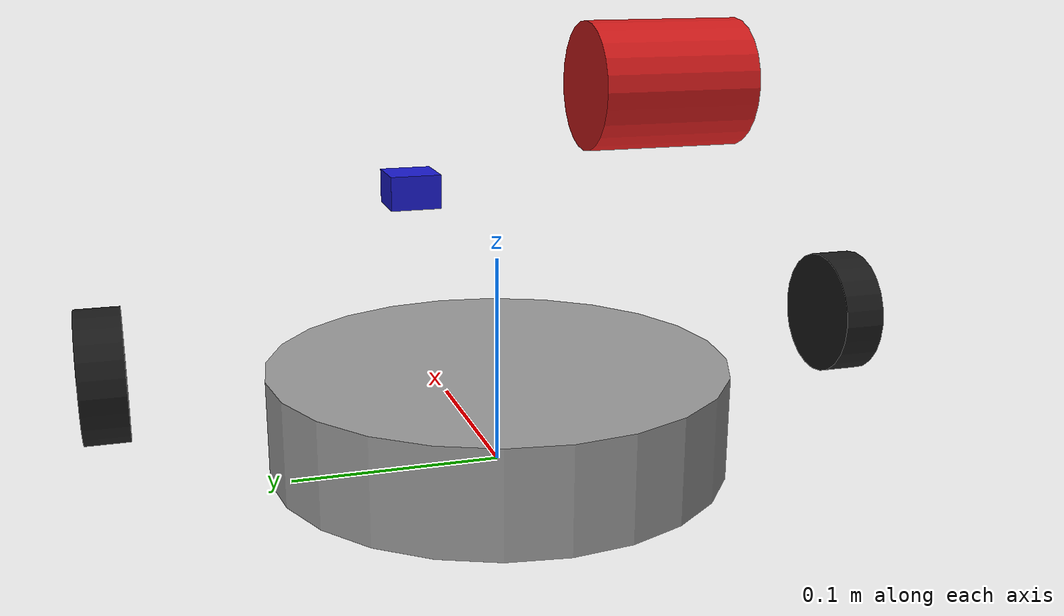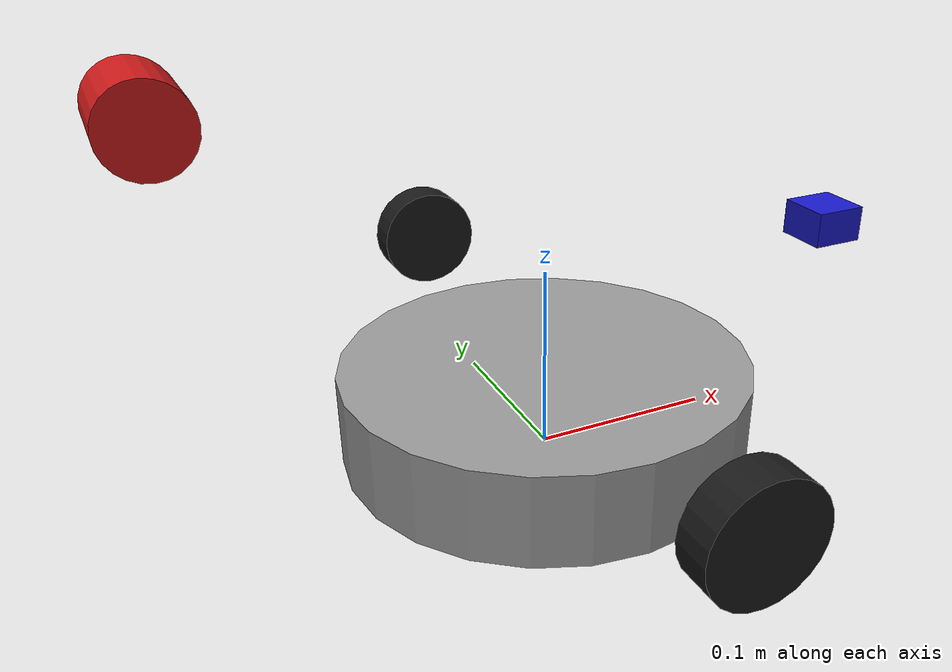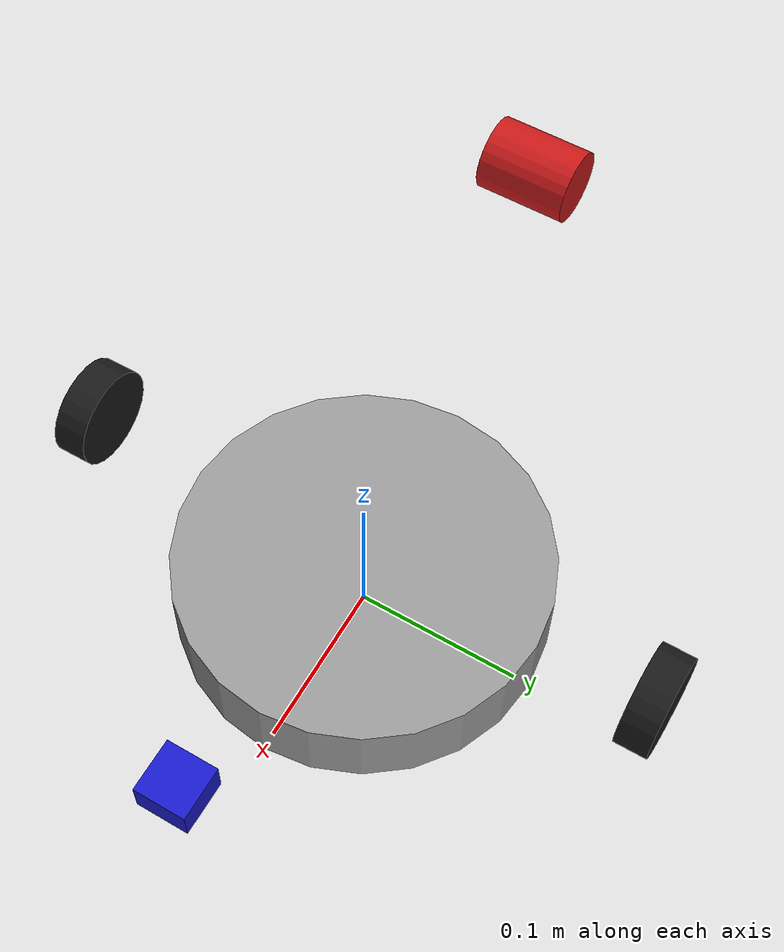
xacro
<?xml version="1.0"?>
<robot name="sweeper_bot" xmlns:xacro="http://ros.org/wiki/xacro">

  <!-- ────────────────── 通用参数 ────────────────── -->
  <xacro:property name="wheel_radius"       value="0.03"/>
  <xacro:property name="wheel_length"       value="0.02"/>   <!-- 轮子厚度 -->
  <xacro:property name="wheel_separation"   value="0.18"/>   <!-- 左右轮中心距 -->
  <xacro:property name="base_radius"        value="0.11"/>
  <xacro:property name="base_height"        value="0.05"/>
  <xacro:property name="wheel_mass"         value="0.10"/>   <!-- kg，每个轮子的质量 -->
  <xacro:property name="base_mass"          value="1.00"/>   <!-- kg，底盘质量 -->

  <!-- base_link -->
  <link name="base_link">
    <visual>
      <geometry>
        <cylinder radius="${base_radius}" length="${base_height}"/>
      </geometry>
      <origin xyz="0 0 ${base_height/2}" rpy="0 0 0"/>
      <material name="gray"><color rgba="0.6 0.6 0.6 1.0"/></material>
    </visual>
    <collision>
      <geometry>
        <cylinder radius="${base_radius}" length="${base_height}"/>
      </geometry>
      <origin xyz="0 0 ${base_height/2}" rpy="0 0 0"/>
    </collision>
    <inertial>
      <mass value="${base_mass}"/>
      <origin xyz="0 0 ${base_height/2}" rpy="0 0 0"/>
      <!-- 粗略圆柱惯性估计：Izz > Ixx = Iyy -->
      <inertia ixx="0.01" iyy="0.01" izz="0.02" ixy="0" ixz="0" iyz="0"/>
    </inertial>
  </link>

  <!-- base_footprint（仅 TF 基准，无视觉） -->
  <link name="base_footprint"/>

  <!-- left_wheel -->
  <link name="left_wheel">
    <visual>
      <geometry>
        <cylinder radius="${wheel_radius}" length="${wheel_length}"/>
      </geometry>
      <origin xyz="0 ${wheel_separation/2} ${wheel_radius}" rpy="1.5708 0 0"/>
      <material name="black"><color rgba="0.1 0.1 0.1 1.0"/></material>
    </visual>
    <collision>
      <geometry>
        <cylinder radius="${wheel_radius}" length="${wheel_length}"/>
      </geometry>
      <origin xyz="0 0 0" rpy="0 0 0"/>
    </collision>
    <inertial>
      <mass value="${wheel_mass}"/>
      <origin xyz="0 0 0" rpy="0 0 0"/>
      <!-- 圆柱惯性：I = ½ m r²（沿轴），I = 1/12 m (3r² + l²)（与轴垂直） -->
      <inertia ixx="1e-4" iyy="1e-4" izz="2e-4" ixy="0" ixz="0" iyz="0"/>
    </inertial>
  </link>

  <!-- right_wheel -->
  <link name="right_wheel">
    <visual>
      <geometry>
        <cylinder radius="${wheel_radius}" length="${wheel_length}"/>
      </geometry>
      <origin xyz="0 -${wheel_separation/2} ${wheel_radius}" rpy="1.5708 0 0"/>
      <material name="black"/>
    </visual>
    <collision>
      <geometry>
        <cylinder radius="${wheel_radius}" length="${wheel_length}"/>
      </geometry>
      <origin xyz="0 0 0" rpy="0 0 0"/>
    </collision>
    <inertial>
      <mass value="${wheel_mass}"/>
      <origin xyz="0 0 0" rpy="0 0 0"/>
      <inertia ixx="1e-4" iyy="1e-4" izz="2e-4" ixy="0" ixz="0" iyz="0"/>
    </inertial>
  </link>

  <!-- imu_link（前方） -->
  <link name="imu_link">
    <visual>
      <geometry>
        <box size="0.03 0.03 0.02"/>
      </geometry>
      <origin xyz="0.09 0 0.05" rpy="0 0 0"/>
      <material name="blue"><color rgba="0.1 0.1 0.8 1.0"/></material>
    </visual>
  </link>

  <!-- base_laser（后方） -->
  <link name="base_laser">
    <visual>
      <geometry>
        <cylinder radius="0.02" length="0.05"/>
      </geometry>
      <origin xyz="-0.09 0 0.10" rpy="1.5708 0 0"/>
      <material name="red"><color rgba="0.8 0.1 0.1 1.0"/></material>
    </visual>
  </link>

  <!-- base_footprint 固定到 base_link -->
  <joint name="base_footprint_joint" type="fixed">
    <parent link="base_footprint"/>
    <child  link="base_link"/>
    <origin xyz="0 0 0" rpy="0 0 0"/>
  </joint>

  <joint name="left_wheel_joint" type="continuous">
    <parent link="base_link"/>
    <child  link="left_wheel"/>
    <origin xyz="0 ${wheel_separation/2} ${wheel_radius}" rpy="0 0 0"/>
    <axis xyz="0 1 0"/>
  </joint>

  <joint name="right_wheel_joint" type="continuous">
    <parent link="base_link"/>
    <child  link="right_wheel"/>
    <origin xyz="0 -${wheel_separation/2} ${wheel_radius}" rpy="0 0 0"/>
    <axis xyz="0 1 0"/>
  </joint>

  <joint name="imu_joint" type="fixed">
    <parent link="base_link"/>
    <child  link="imu_link"/>
    <origin xyz="0.09 0 0.05" rpy="0 0 0"/>
  </joint>

  <joint name="laser_joint" type="fixed">
    <parent link="base_link"/>
    <child  link="base_laser"/>
    <origin xyz="-0.09 0 0.10" rpy="0 0 0"/>
  </joint>

  <!-- ────────────────── Transmissions（可选，用于 ros2_control） ────────────────── -->
  <!-- 如只用 Gazebo diff_drive 插件，可跳过；如需切换 diff_drive_controller 则保留 -->
  <transmission name="left_wheel_trans">
    <type>transmission_interface/SimpleTransmission</type>
    <joint name="left_wheel_joint">
      <hardwareInterface>hardware_interface/VelocityJointInterface</hardwareInterface>
    </joint>
    <actuator name="left_wheel_motor">
      <hardwareInterface>hardware_interface/VelocityJointInterface</hardwareInterface>
      <mechanicalReduction>1</mechanicalReduction>
    </actuator>
  </transmission>

  <transmission name="right_wheel_trans">
    <type>transmission_interface/SimpleTransmission</type>
    <joint name="right_wheel_joint">
      <hardwareInterface>hardware_interface/VelocityJointInterface</hardwareInterface>
    </joint>
    <actuator name="right_wheel_motor">
      <hardwareInterface>hardware_interface/VelocityJointInterface</hardwareInterface>
      <mechanicalReduction>1</mechanicalReduction>
    </actuator>
  </transmission>

  <!-- ────────────────── Gazebo 插件 & 材质 ────────────────── -->
  <gazebo>
    <plugin name="diff_drive" filename="libgazebo_ros_diff_drive.so">
      <ros>
        <namespace>/</namespace>
      </ros>
      <update_rate>50</update_rate>
      <left_joint>left_wheel_joint</left_joint>
      <right_joint>right_wheel_joint</right_joint>
      <wheel_separation>${wheel_separation}</wheel_separation>
      <wheel_diameter>${2*wheel_radius}</wheel_diameter>
      <command_topic>/cmd_vel</command_topic>
      <odometry_topic>/odom</odometry_topic>
      <odometry_frame>odom</odometry_frame>
      <robot_base_frame>base_link</robot_base_frame>
      <publish_tf>true</publish_tf>
      <publish_odom>true</publish_odom>
      <enable_velocity_rolling_mean>true</enable_velocity_rolling_mean>
    </plugin>
  </gazebo>

  <!-- 摩擦 & 物理参数 -->
  <gazebo reference="left_wheel">
    <mu1>0.8</mu1>
    <mu2>0.8</mu2>
    <kp>1000000.0</kp>
    <kd>1.0</kd>
  </gazebo>

  <gazebo reference="right_wheel">
    <mu1>0.8</mu1>
    <mu2>0.8</mu2>
    <kp>1000000.0</kp>
    <kd>1.0</kd>
  </gazebo>

  <gazebo reference="base_link">
    <material>Gazebo/Gray</material>
  </gazebo>

</robot>
